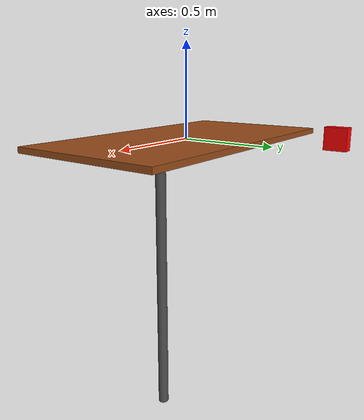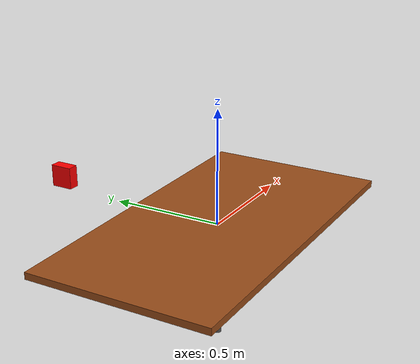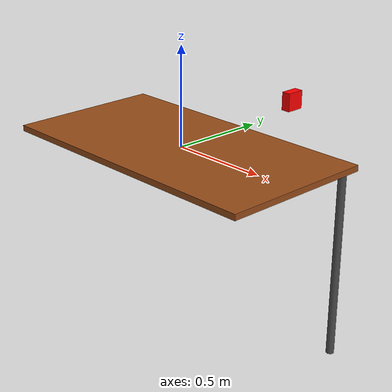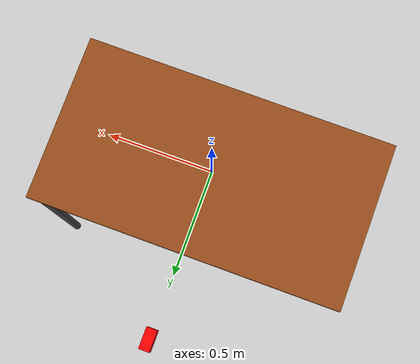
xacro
<?xml version="1.0"?>
<robot name="world_converted">

  <!-- Ground Plane -->

  <!-- Table -->
  <link name="table">
    <visual>
      <geometry>
        <box size="1.5 0.8 0.03"/>
      </geometry>
      <material>
        <color rgba="0.6 0.3 0.1 1"/>
      </material>
    </visual>
  </link>

  <!-- Table Legs -->
  <link name="table_leg_1">
    <visual>
      <geometry>
        <cylinder radius="0.02" length="1"/>
      </geometry>
      <material>
        <color rgba="0.3 0.3 0.3 1"/>
      </material>
    </visual>
  </link>
  <joint name="table_leg_1_joint" type="fixed">
    <parent link="table"/>
    <child link="table_leg_1"/>
    <origin xyz="0.68 0.38 -0.5"/>
  </joint>

  <!-- Cube -->
  <link name="cube">
    <visual>
      <geometry>
        <box size="0.05 0.1 0.1"/>
      </geometry>
      <material>
        <color rgba="1 0 0 1"/>
      </material>
    </visual>
  </link>
  <joint name="cube_fixed" type="fixed">
    <parent link="table"/>
    <child link="cube"/>
    <origin xyz="0 0.8 0.065"/>
  </joint>

</robot>
